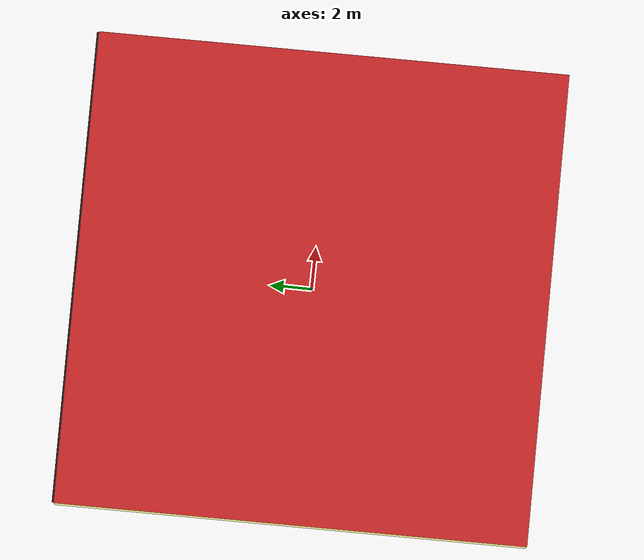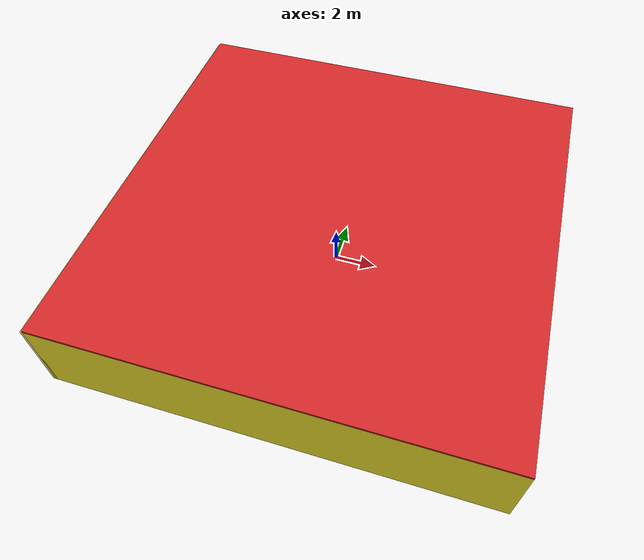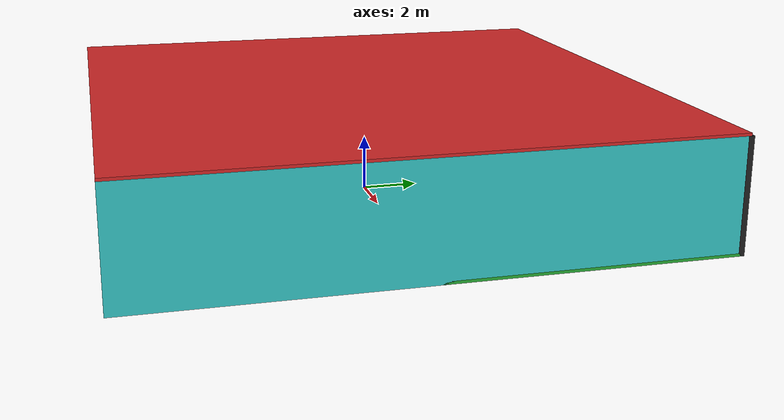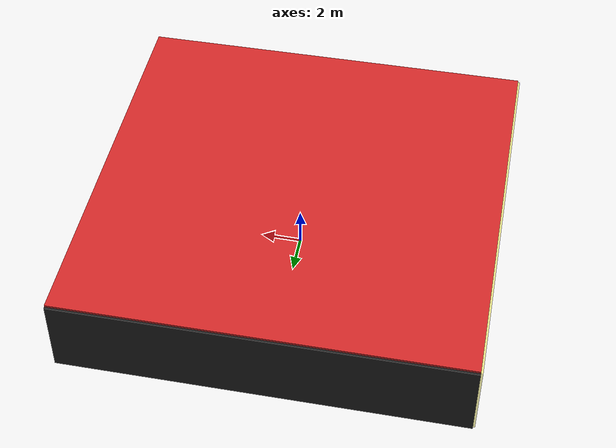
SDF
<sdf version="1.4">
 <world name="default">
  <physics type="ode">
   <max_step_size>0.001</max_step_size>
   <real_time_factor>1</real_time_factor>
   <real_time_update_rate>1000</real_time_update_rate>
   <gravity>0 0 -9.8</gravity>
  </physics>
  <scene><ambient>0.4 0.4 0.4 1</ambient><background>0.7 0.7 0.7 1</background><shadows>1</shadows></scene>
  <model name="Surrounding">
   <static>1</static>
   <link name="Ceiling">
    <collision name="Ceiling_Collision"><geometry><box><size>20 20 0.1</size></box></geometry></collision>
    <visual name="Ceiling_Visual">
     <geometry><box><size>20 20 0.1</size></box></geometry>
     <material>
      <script><uri>file://media/materials/scripts/gazebo.material</uri><name>Gazebo/RedGlow</name></script>
     </material>
    </visual>
    <pose>0 0 4.05 0 0 0</pose>
   </link>
   <link name="Wall_South">
    <collision name="Wall_South_Collision">
     <geometry><box><size>20 0 4</size></box></geometry>
     <pose>0 0 2 0 -0 0</pose>
    </collision>
    <visual name="Wall_South_Visual">
     <pose>0 0 2 0 -0 0</pose>
     <geometry><box><size>20 0 4</size></box></geometry>
     <material>
      <script><uri>file://media/materials/scripts/gazebo.material</uri><name>Gazebo/YellowGlow</name></script>
     </material>
    </visual>
    <velocity_decay><linear>0</linear><angular>0</angular></velocity_decay>
    <pose>0 -10 0 0 -0 0</pose>
   </link>
   <link name="Wall_East">
    <collision name="Wall_21_Collision">
     <geometry><box><size>20 0 4</size></box></geometry>
     <pose>0 0 2 0 -0 0</pose>
    </collision>
    <visual name="Wall_21_Visual">
     <pose>0 0 2 0 -0 0</pose>
     <geometry><box><size>20 0 4</size></box></geometry>
     <material>
      <script><uri>file://media/materials/scripts/gazebo.material</uri><name>Gazebo/TurquoiseGlow</name></script>
     </material>
    </visual>
    <velocity_decay><linear>0</linear><angular>0</angular></velocity_decay>
    <pose>10 0 0 0 -0 1.5708</pose>
   </link>
   <link name="Wall_North">
    <collision name="Wall_22_Collision">
     <geometry><box><size>20 0.2 4</size></box></geometry>
     <pose>0 0 2 0 -0 0</pose>
    </collision>
    <visual name="Wall_22_Visual">
     <pose>0 0 2 0 -0 0</pose>
     <geometry><box><size>20 0.2 4</size></box></geometry>
     <material>
      <script><uri>file://media/materials/scripts/gazebo.material</uri><name>Gazebo/FlatBlack</name></script>
     </material>
    </visual>
    <velocity_decay><linear>0</linear><angular>0</angular></velocity_decay>
    <pose>0 10 0 0 -0 0</pose>
   </link>
   <link name="Wall_West">
    <collision name="Wall_23_Collision">
     <geometry><box><size>20 0.2 4</size></box></geometry>
     <pose>0 0 2 0 -0 0</pose>
    </collision>
    <visual name="Wall_23_Visual">
     <pose>0 0 2 0 -0 0</pose>
     <geometry><box><size>20 0.2 4</size></box></geometry>
     <material>
      <script>
       <uri>file://media/materials/scripts/gazebo.material</uri>
       <name>Gazebo/YellowTransparent</name>
      </script>
     </material>
    </visual>
    <velocity_decay><linear>0</linear><angular>0</angular></velocity_decay>
    <pose>-10 0 0 0 0 -1.5708</pose>
   </link>
   <link name="Ground_link">
    <collision name="collision">
     <pose>0 0 .05 0 -0 0</pose>
     <geometry><box><size>20 20 0.1</size></box></geometry>
    </collision>
    <visual name="visual">
     <pose>0 0 .05 0 -0 0</pose>
     <geometry><box><size>20 20 0.1</size></box></geometry>
     <material>
      <script><uri>file://media/materials/scripts/gazebo.material</uri><name>Gazebo/GreenGlow</name></script>
     </material>
    </visual>
   </link>
   <static>1</static>
  </model>
  <spherical_coordinates>
   <surface_model>EARTH_WGS84</surface_model>
   <latitude_deg>0</latitude_deg>
   <longitude_deg>0</longitude_deg>
   <elevation>0</elevation>
   <heading_deg>0</heading_deg>
  </spherical_coordinates>
  <light name="lightball_0" type="diffuse">
   <diffuse>0.8 0.8 0.8 1</diffuse>
   <specular>0.2 0.2 0.2 1</specular>
   <attenuation>
    <range>100</range>
    <constant>0.7</constant>
    <linear>0.01</linear>
    <quadratic>0.001</quadratic>
   </attenuation>
   <direction>-0.5 0.1 -0.9</direction>
   <pose>8.12711634266 1.77575815698 3.46088592501 0 0 0</pose>
  </light>
  <light name="lightball_1" type="diffuse">
   <diffuse>0.8 0.8 0.8 1</diffuse>
   <specular>0.2 0.2 0.2 1</specular>
   <attenuation>
    <range>100</range>
    <constant>0.7</constant>
    <linear>0.01</linear>
    <quadratic>0.001</quadratic>
   </attenuation>
   <direction>-0.5 0.1 -0.9</direction>
   <pose>0.144559919041 7.10338645233 2.97747741428 0 0 0</pose>
  </light>
  <light name="lightball_2" type="diffuse">
   <diffuse>0.8 0.8 0.8 1</diffuse>
   <specular>0.2 0.2 0.2 1</specular>
   <attenuation>
    <range>100</range>
    <constant>0.7</constant>
    <linear>0.01</linear>
    <quadratic>0.001</quadratic>
   </attenuation>
   <direction>-0.5 0.1 -0.9</direction>
   <pose>-8.28716114412 1.24590384305 3.36086887132 0 0 0</pose>
  </light>
  <light name="lightball_3" type="diffuse">
   <diffuse>0.8 0.8 0.8 1</diffuse>
   <specular>0.2 0.2 0.2 1</specular>
   <attenuation>
    <range>100</range>
    <constant>0.7</constant>
    <linear>0.01</linear>
    <quadratic>0.001</quadratic>
   </attenuation>
   <direction>-0.5 0.1 -0.9</direction>
   <pose>-2.01957828399 3.71146459297 3.38745838831 0 0 0</pose>
  </light>
  <light name="lightball_4" type="diffuse">
   <diffuse>0.8 0.8 0.8 1</diffuse>
   <specular>0.2 0.2 0.2 1</specular>
   <attenuation>
    <range>100</range>
    <constant>0.7</constant>
    <linear>0.01</linear>
    <quadratic>0.001</quadratic>
   </attenuation>
   <direction>-0.5 0.1 -0.9</direction>
   <pose>4.4398516083 9.51438797281 3.70303837493 0 0 0</pose>
  </light>
  <light name="lightball_5" type="diffuse">
   <diffuse>0.8 0.8 0.8 1</diffuse>
   <specular>0.2 0.2 0.2 1</specular>
   <attenuation>
    <range>100</range>
    <constant>0.7</constant>
    <linear>0.01</linear>
    <quadratic>0.001</quadratic>
   </attenuation>
   <direction>-0.5 0.1 -0.9</direction>
   <pose>8.17559935085 -8.61042140958 1.86689495834 0 0 0</pose>
  </light>
  <light name="lightball_6" type="diffuse">
   <diffuse>0.8 0.8 0.8 1</diffuse>
   <specular>0.2 0.2 0.2 1</specular>
   <attenuation>
    <range>100</range>
    <constant>0.7</constant>
    <linear>0.01</linear>
    <quadratic>0.001</quadratic>
   </attenuation>
   <direction>-0.5 0.1 -0.9</direction>
   <pose>9.40135525477 9.16414572676 2.06208571912 0 0 0</pose>
  </light>
  <light name="lightball_7" type="diffuse">
   <diffuse>0.8 0.8 0.8 1</diffuse>
   <specular>0.2 0.2 0.2 1</specular>
   <attenuation>
    <range>100</range>
    <constant>0.7</constant>
    <linear>0.01</linear>
    <quadratic>0.001</quadratic>
   </attenuation>
   <direction>-0.5 0.1 -0.9</direction>
   <pose>6.5965216043 8.17126661287 2.2684217086 0 0 0</pose>
  </light>
  <include>
   <uri>model://construction_cone</uri>
   <pose>4.78675948168 -7.79849915021 0 0 0 0.476926859434</pose>
  </include>
  <include>
   <uri>model://textured_shapes</uri>
   <pose>3.97983097798 0.732518133159 0 0 0 0.804423815827</pose>
  </include>
  <include><uri>model://table</uri><pose>6.90776975389 8.6355871717 0 0 0 0.568899246854</pose></include>
 </world>
</sdf>

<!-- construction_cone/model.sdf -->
<sdf version="1.5">
  <model name="Construction Cone">
    <link name="link">
      <collision name="collision">
        <geometry>
          <mesh>
            <scale>10 10 10</scale>
            <uri>file://isr-testbed/construction_cone/meshes/construction_cone.dae</uri>
          </mesh>
        </geometry>
      </collision>
      <visual name="visual">
        <geometry>
          <mesh>
            <scale>10 10 10</scale>
            <uri>file://isr-testbed/construction_cone/meshes/construction_cone.dae</uri>
          </mesh>
        </geometry>
      </visual>
    </link>
  </model>
</sdf>

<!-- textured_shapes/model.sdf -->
<sdf version="1.6">
  <model name="textured_shapes">
    <pose>0 0 0.5 0 0 0</pose>
    <link name="box">
      <pose>0 -1.5 0 0 0 0</pose>
      <collision name="collision">
        <geometry>
          <box>
            <size>1 1 1</size>
          </box>
        </geometry>
      </collision>
      <visual name="visual">
        <geometry>
          <box>
            <size>1 1 1</size>
          </box>
        </geometry>
        <material>
          <script>
            <uri>model://../model_source/models/textured_shapes/materials/scripts</uri>
            <uri>model://../model_source/models/textured_shapes/materials/textures</uri>
            <name>TexturedShape/Squares</name>
          </script>
        </material>
      </visual>
    </link>
    <link name="sphere">
      <collision name="collision">
        <geometry>
          <sphere>
            <radius>0.5</radius>
          </sphere>
        </geometry>
      </collision>
      <visual name="visual">
        <geometry>
          <sphere>
            <radius>0.5</radius>
          </sphere>
        </geometry>
        <material>
          <script>
            <uri>model://../model_source/models/textured_shapes/materials/scripts</uri>
            <uri>model://../model_source/models/textured_shapes/materials/textures</uri>
            <name>TexturedShape/Squares</name>
          </script>
        </material>
      </visual>
    </link>
    <link name="cylinder">
      <pose>0 1.5 0 0 0 0</pose>
      <collision name="collision">
        <geometry>
          <cylinder>
            <radius>0.5</radius>
            <length>1</length>
          </cylinder>
        </geometry>
      </collision>
      <visual name="visual">
        <geometry>
          <cylinder>
            <radius>0.5</radius>
            <length>1</length>
          </cylinder>
        </geometry>
        <material>
          <script>
            <uri>model://../model_source/models/textured_shapes/materials/scripts</uri>
            <uri>model://../model_source/models/textured_shapes/materials/textures</uri>
            <name>TexturedShape/Squares</name>
          </script>
        </material>
      </visual>
    </link>
  </model>
</sdf>

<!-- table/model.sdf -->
<sdf version="1.5">
  <model name="table">
    <static>true</static>
    <link name="link">
      <collision name="surface">
        <pose>0 0 1.0 0 0 0</pose>
        <geometry>
          <box>
            <size>1.5 0.8 0.03</size>
          </box>
        </geometry>
        <surface>
          <friction>
            <ode>
              <mu>0.6</mu>
              <mu2>0.6</mu2>
            </ode>
          </friction>
        </surface>
      </collision>
      <visual name="visual1">
        <pose>0 0 1.0 0 0 0</pose>
        <geometry>
          <box>
            <size>1.5 0.8 0.03</size>
          </box>
        </geometry>
        <material>
          <script>
            <uri>model://media/materials/scripts/gazebo.material</uri>
            <name>Gazebo/Wood</name>
          </script>
        </material>
      </visual>
      <collision name="front_left_leg">
        <pose>0.68 0.38 0.5 0 0 0</pose>
        <geometry>
          <cylinder>
            <radius>0.02</radius>
            <length>1.0</length>
          </cylinder>
        </geometry>
      </collision>
      <visual name="front_left_leg">
        <pose>0.68 0.38 0.5 0 0 0</pose>
        <geometry>
          <cylinder>
            <radius>0.02</radius>
            <length>1.0</length>
          </cylinder>
        </geometry>
        <material>
          <script>
            <uri>model://media/materials/scripts/gazebo.material</uri>
            <name>Gazebo/Grey</name>
          </script>
        </material>
      </visual>
      <collision name="front_right_leg">
        <pose>0.68 -0.38 0.5 0 0 0</pose>
        <geometry>
          <cylinder>
            <radius>0.02</radius>
            <length>1.0</length>
          </cylinder>
        </geometry>
      </collision>
      <visual name="front_right_leg">
        <pose>0.68 -0.38 0.5 0 0 0</pose>
        <geometry>
          <cylinder>
            <radius>0.02</radius>
            <length>1.0</length>
          </cylinder>
        </geometry>
        <material>
          <script>
            <uri>model://media/materials/scripts/gazebo.material</uri>
            <name>Gazebo/Grey</name>
          </script>
        </material>
      </visual>
      <collision name="back_right_leg">
        <pose>-0.68 -0.38 0.5 0 0 0</pose>
        <geometry>
          <cylinder>
            <radius>0.02</radius>
            <length>1.0</length>
          </cylinder>
        </geometry>
      </collision>
      <visual name="back_right_leg">
        <pose>-0.68 -0.38 0.5 0 0 0</pose>
        <geometry>
          <cylinder>
            <radius>0.02</radius>
            <length>1.0</length>
          </cylinder>
        </geometry>
        <material>
          <script>
            <uri>model://media/materials/scripts/gazebo.material</uri>
            <name>Gazebo/Grey</name>
          </script>
        </material>
      </visual>
      <collision name="back_left_leg">
        <pose>-0.68 0.38 0.5 0 0 0</pose>
        <geometry>
          <cylinder>
            <radius>0.02</radius>
            <length>1.0</length>
          </cylinder>
        </geometry>
      </collision>
      <visual name="back_left_leg">
        <pose>-0.68 0.38 0.5 0 0 0</pose>
        <geometry>
          <cylinder>
            <radius>0.02</radius>
            <length>1.0</length>
          </cylinder>
        </geometry>
        <material>
          <script>
            <uri>model://media/materials/scripts/gazebo.material</uri>
            <name>Gazebo/Grey</name>
          </script>
        </material>
      </visual>
    </link>
  </model>
</sdf>
